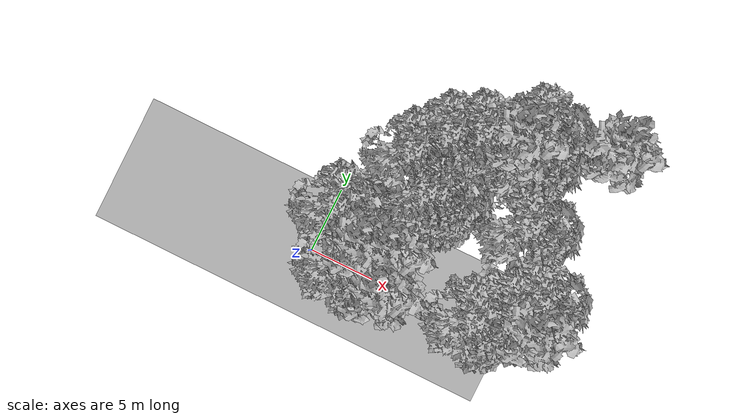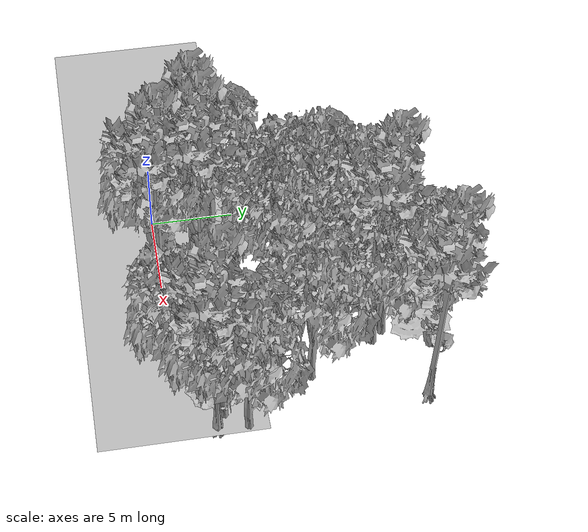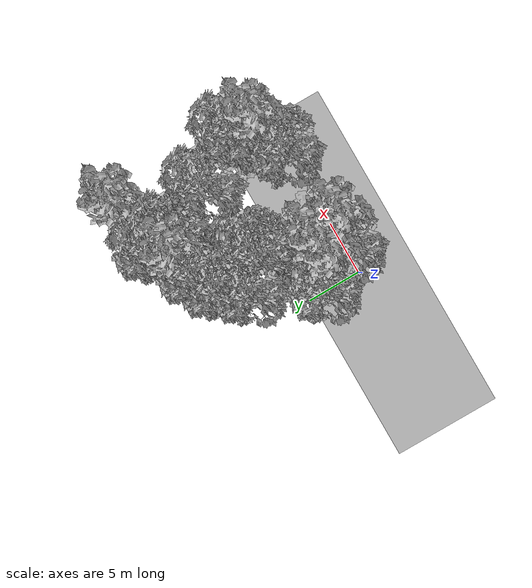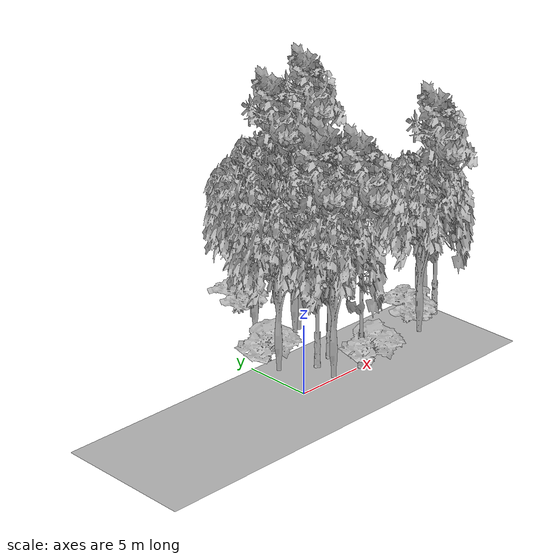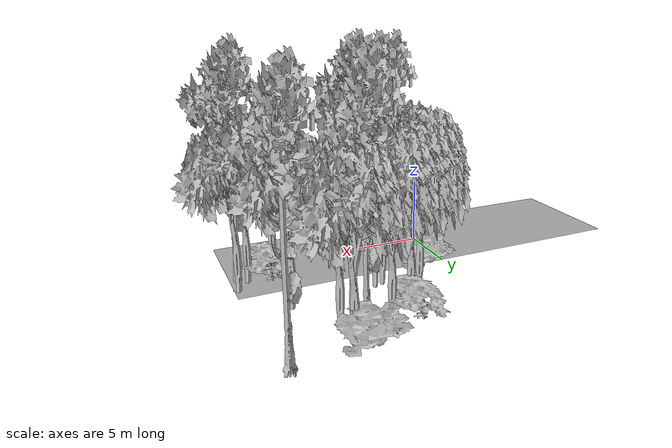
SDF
<sdf version="1.7">
 <world name="default">
  <model name="ground_plane">
   <static>1</static>
   <link name="link">
    <collision name="collision">
     <pose>-50 0 0 0 -0 0</pose>
     <geometry><plane><normal>0 0 1</normal><size>100 100</size></plane></geometry>
     <surface><contact><ode><min_depth>0.01</min_depth><max_vel>0</max_vel></ode></contact></surface>
    </collision>
    <visual name="grass">
     <cast_shadows>0</cast_shadows>
     <geometry>
      <mesh>
       <scale>0.5814285714285714 0.18142857142857144 0.1</scale>
       <uri>file://grass_plane/meshes/grass_plane.dae</uri>
      </mesh>
     </geometry>
    </visual>
   </link>
  </model>
  <model name="Tree 4">
   <static>1</static>
   <pose>10.652877007069627 13.814345372245114 0 1.57079 -0 0</pose>
   <link name="link">
    <collision name="collision">
     <geometry><mesh><scale>3.5 5 3.5</scale><uri>model://tree_2/meshes/tree_2.obj</uri></mesh></geometry>
    </collision>
    <visual name="visual">
     <geometry><mesh><scale>3.5 5 3.5</scale><uri>model://tree_2/meshes/tree_2.obj</uri></mesh></geometry>
    </visual>
   </link>
  </model>
  <model name="Tree 15">
   <static>1</static>
   <pose>12.84035809433049 2.5421332068999725 0 1.57079 -0 0</pose>
   <link name="link">
    <collision name="collision">
     <geometry><mesh><scale>4 2.5 4</scale><uri>model://tree_1/meshes/tree_1.obj</uri></mesh></geometry>
    </collision>
    <visual name="visual">
     <geometry><mesh><scale>4 2.5 4</scale><uri>model://tree_1/meshes/tree_1.obj</uri></mesh></geometry>
    </visual>
   </link>
  </model>
  <model name="Tree 23">
   <static>1</static>
   <pose>5.831807972442945 6.8223870980369625 0 1.57079 -0 0</pose>
   <link name="link">
    <collision name="collision">
     <geometry><mesh><scale>3.5 5 3.5</scale><uri>model://tree_2/meshes/tree_2.obj</uri></mesh></geometry>
    </collision>
    <visual name="visual">
     <geometry><mesh><scale>3.5 5 3.5</scale><uri>model://tree_2/meshes/tree_2.obj</uri></mesh></geometry>
    </visual>
   </link>
  </model>
  <model name="Tree 29">
   <static>1</static>
   <pose>5.5614273797064655 12.232940732049109 0 1.57079 -0 0</pose>
   <link name="link">
    <collision name="collision">
     <geometry><mesh><scale>4 2.5 4</scale><uri>model://tree_1/meshes/tree_1.obj</uri></mesh></geometry>
    </collision>
    <visual name="visual">
     <geometry><mesh><scale>4 2.5 4</scale><uri>model://tree_1/meshes/tree_1.obj</uri></mesh></geometry>
    </visual>
   </link>
  </model>
  <model name="Tree 36">
   <static>1</static>
   <pose>10.157732636431128 12.382553108645869 0 1.57079 -0 0</pose>
   <link name="link">
    <collision name="collision">
     <geometry><mesh><scale>3.5 5 3.5</scale><uri>model://tree_2/meshes/tree_2.obj</uri></mesh></geometry>
    </collision>
    <visual name="visual">
     <geometry><mesh><scale>3.5 5 3.5</scale><uri>model://tree_2/meshes/tree_2.obj</uri></mesh></geometry>
    </visual>
   </link>
  </model>
  <model name="Tree 49">
   <static>1</static>
   <pose>12.162889093048655 0.8104841408958166 0 1.57079 -0 0</pose>
   <link name="link">
    <collision name="collision">
     <geometry><mesh><scale>3.5 5 3.5</scale><uri>model://tree_2/meshes/tree_2.obj</uri></mesh></geometry>
    </collision>
    <visual name="visual">
     <geometry><mesh><scale>3.5 5 3.5</scale><uri>model://tree_2/meshes/tree_2.obj</uri></mesh></geometry>
    </visual>
   </link>
  </model>
  <model name="Tree 60">
   <static>1</static>
   <pose>5.5313805831051965 10.817798892997022 0 1.57079 -0 0</pose>
   <link name="link">
    <collision name="collision">
     <geometry><mesh><scale>3.5 5 3.5</scale><uri>model://tree_2/meshes/tree_2.obj</uri></mesh></geometry>
    </collision>
    <visual name="visual">
     <geometry><mesh><scale>3.5 5 3.5</scale><uri>model://tree_2/meshes/tree_2.obj</uri></mesh></geometry>
    </visual>
   </link>
  </model>
  <model name="Tree 73">
   <static>1</static>
   <pose>14.779847639232251 14.207148213448285 0 1.57079 -0 0</pose>
   <link name="link">
    <collision name="collision">
     <geometry><mesh><scale>3.5 5 3.5</scale><uri>model://tree_9/meshes/tree_9.obj</uri></mesh></geometry>
    </collision>
    <visual name="visual">
     <geometry><mesh><scale>3.5 5 3.5</scale><uri>model://tree_9/meshes/tree_9.obj</uri></mesh></geometry>
    </visual>
   </link>
  </model>
  <model name="Tree 103">
   <static>1</static>
   <pose>3.8859466396088607 8.80918973194283 0 1.57079 -0 0</pose>
   <link name="link">
    <collision name="collision">
     <geometry><mesh><scale>3.5 5 3.5</scale><uri>model://tree_2/meshes/tree_2.obj</uri></mesh></geometry>
    </collision>
    <visual name="visual">
     <geometry><mesh><scale>3.5 5 3.5</scale><uri>model://tree_2/meshes/tree_2.obj</uri></mesh></geometry>
    </visual>
   </link>
  </model>
  <model name="Tree 151">
   <static>1</static>
   <pose>15.143373370145376 1.955848692202796 0 1.57079 -0 0</pose>
   <link name="link">
    <collision name="collision">
     <geometry><mesh><scale>3.5 5 3.5</scale><uri>model://tree_9/meshes/tree_9.obj</uri></mesh></geometry>
    </collision>
    <visual name="visual">
     <geometry><mesh><scale>3.5 5 3.5</scale><uri>model://tree_9/meshes/tree_9.obj</uri></mesh></geometry>
    </visual>
   </link>
  </model>
  <model name="Tree 152">
   <static>1</static>
   <pose>15.306101644504196 3.6827109826468245 0 1.57079 -0 0</pose>
   <link name="link">
    <collision name="collision">
     <geometry><mesh><scale>3.5 5 3.5</scale><uri>model://tree_2/meshes/tree_2.obj</uri></mesh></geometry>
    </collision>
    <visual name="visual">
     <geometry><mesh><scale>3.5 5 3.5</scale><uri>model://tree_2/meshes/tree_2.obj</uri></mesh></geometry>
    </visual>
   </link>
  </model>
  <model name="Tree 162">
   <static>1</static>
   <pose>5.448497126520174 0.003103194746577387 0 1.57079 -0 0</pose>
   <link name="link">
    <collision name="collision">
     <geometry><mesh><scale>3.5 5 3.5</scale><uri>model://tree_9/meshes/tree_9.obj</uri></mesh></geometry>
    </collision>
    <visual name="visual">
     <geometry><mesh><scale>3.5 5 3.5</scale><uri>model://tree_9/meshes/tree_9.obj</uri></mesh></geometry>
    </visual>
   </link>
  </model>
  <model name="Tree 176">
   <static>1</static>
   <pose>1.1158255381968019 3.6014377995991538 0 1.57079 -0 0</pose>
   <link name="link">
    <collision name="collision">
     <geometry><mesh><scale>3.5 5 3.5</scale><uri>model://tree_2/meshes/tree_2.obj</uri></mesh></geometry>
    </collision>
    <visual name="visual">
     <geometry><mesh><scale>3.5 5 3.5</scale><uri>model://tree_2/meshes/tree_2.obj</uri></mesh></geometry>
    </visual>
   </link>
  </model>
  <model name="Tree 178">
   <static>1</static>
   <pose>9.346257125280815 12.301523748790544 0 1.57079 -0 0</pose>
   <link name="link">
    <collision name="collision">
     <geometry><mesh><scale>3.5 5 3.5</scale><uri>model://tree_9/meshes/tree_9.obj</uri></mesh></geometry>
    </collision>
    <visual name="visual">
     <geometry><mesh><scale>3.5 5 3.5</scale><uri>model://tree_9/meshes/tree_9.obj</uri></mesh></geometry>
    </visual>
   </link>
  </model>
  <model name="Tree 191">
   <static>1</static>
   <pose>2.9984105734596085 0.2837615686469004 0 1.57079 -0 0</pose>
   <link name="link">
    <collision name="collision">
     <geometry><mesh><scale>3.5 5 3.5</scale><uri>model://tree_2/meshes/tree_2.obj</uri></mesh></geometry>
    </collision>
    <visual name="visual">
     <geometry><mesh><scale>3.5 5 3.5</scale><uri>model://tree_2/meshes/tree_2.obj</uri></mesh></geometry>
    </visual>
   </link>
  </model>
  <model name="Tree 192">
   <static>1</static>
   <pose>9.853140923365508 14.309592575256783 0 1.57079 -0 0</pose>
   <link name="link">
    <collision name="collision">
     <geometry><mesh><scale>3 2 3</scale><uri>model://tree_3/meshes/tree_3.obj</uri></mesh></geometry>
    </collision>
    <visual name="visual">
     <geometry><mesh><scale>3 2 3</scale><uri>model://tree_3/meshes/tree_3.obj</uri></mesh></geometry>
    </visual>
   </link>
  </model>
  <model name="Tree 195">
   <static>1</static>
   <pose>12.672063365775365 7.728310769101654 0 1.57079 -0 0</pose>
   <link name="link">
    <collision name="collision">
     <geometry><mesh><scale>3.5 5 3.5</scale><uri>model://tree_2/meshes/tree_2.obj</uri></mesh></geometry>
    </collision>
    <visual name="visual">
     <geometry><mesh><scale>3.5 5 3.5</scale><uri>model://tree_2/meshes/tree_2.obj</uri></mesh></geometry>
    </visual>
   </link>
  </model>
  <model name="Tree 208">
   <static>1</static>
   <pose>6.644138019476358 0.005878795606991005 0 1.57079 -0 0</pose>
   <link name="link">
    <collision name="collision">
     <geometry><mesh><scale>3 2 3</scale><uri>model://tree_3/meshes/tree_3.obj</uri></mesh></geometry>
    </collision>
    <visual name="visual">
     <geometry><mesh><scale>3 2 3</scale><uri>model://tree_3/meshes/tree_3.obj</uri></mesh></geometry>
    </visual>
   </link>
  </model>
  <model name="Tree 220">
   <static>1</static>
   <pose>14.382217112722842 2.3980566814253166 0 1.57079 -0 0</pose>
   <link name="link">
    <collision name="collision">
     <geometry><mesh><scale>3.5 5 3.5</scale><uri>model://tree_2/meshes/tree_2.obj</uri></mesh></geometry>
    </collision>
    <visual name="visual">
     <geometry><mesh><scale>3.5 5 3.5</scale><uri>model://tree_2/meshes/tree_2.obj</uri></mesh></geometry>
    </visual>
   </link>
  </model>
  <model name="Tree 239">
   <static>1</static>
   <pose>3.3991129045368993 2.131559033633213 0 1.57079 -0 0</pose>
   <link name="link">
    <collision name="collision">
     <geometry><mesh><scale>3.5 5 3.5</scale><uri>model://tree_9/meshes/tree_9.obj</uri></mesh></geometry>
    </collision>
    <visual name="visual">
     <geometry><mesh><scale>3.5 5 3.5</scale><uri>model://tree_9/meshes/tree_9.obj</uri></mesh></geometry>
    </visual>
   </link>
  </model>
  <model name="Tree 252">
   <static>1</static>
   <pose>10.774183514917858 11.699812389488702 0 1.57079 -0 0</pose>
   <link name="link">
    <collision name="collision">
     <geometry><mesh><scale>3.5 5 3.5</scale><uri>model://tree_2/meshes/tree_2.obj</uri></mesh></geometry>
    </collision>
    <visual name="visual">
     <geometry><mesh><scale>3.5 5 3.5</scale><uri>model://tree_2/meshes/tree_2.obj</uri></mesh></geometry>
    </visual>
   </link>
  </model>
  <model name="Tree 260">
   <static>1</static>
   <pose>1.7719700873063928 5.084098537642777 0 1.57079 -0 0</pose>
   <link name="link">
    <collision name="collision">
     <geometry><mesh><scale>3 2 3</scale><uri>model://tree_3/meshes/tree_3.obj</uri></mesh></geometry>
    </collision>
    <visual name="visual">
     <geometry><mesh><scale>3 2 3</scale><uri>model://tree_3/meshes/tree_3.obj</uri></mesh></geometry>
    </visual>
   </link>
  </model>
  <model name="Tree 264">
   <static>1</static>
   <pose>7.336754913161521 11.791334842993507 0 1.57079 -0 0</pose>
   <link name="link">
    <collision name="collision">
     <geometry><mesh><scale>3.5 5 3.5</scale><uri>model://tree_2/meshes/tree_2.obj</uri></mesh></geometry>
    </collision>
    <visual name="visual">
     <geometry><mesh><scale>3.5 5 3.5</scale><uri>model://tree_2/meshes/tree_2.obj</uri></mesh></geometry>
    </visual>
   </link>
  </model>
  <model name="Tree 280">
   <static>1</static>
   <pose>4.912399815500208 2.490113166891774 0 1.57079 -0 0</pose>
   <link name="link">
    <collision name="collision">
     <geometry><mesh><scale>3.5 5 3.5</scale><uri>model://tree_9/meshes/tree_9.obj</uri></mesh></geometry>
    </collision>
    <visual name="visual">
     <geometry><mesh><scale>3.5 5 3.5</scale><uri>model://tree_9/meshes/tree_9.obj</uri></mesh></geometry>
    </visual>
   </link>
  </model>
  <model name="Tree 288">
   <static>1</static>
   <pose>6.467043001111811 7.038387698577008 0 1.57079 -0 0</pose>
   <link name="link">
    <collision name="collision">
     <geometry><mesh><scale>3.5 5 3.5</scale><uri>model://tree_2/meshes/tree_2.obj</uri></mesh></geometry>
    </collision>
    <visual name="visual">
     <geometry><mesh><scale>3.5 5 3.5</scale><uri>model://tree_2/meshes/tree_2.obj</uri></mesh></geometry>
    </visual>
   </link>
  </model>
 </world>
</sdf>
